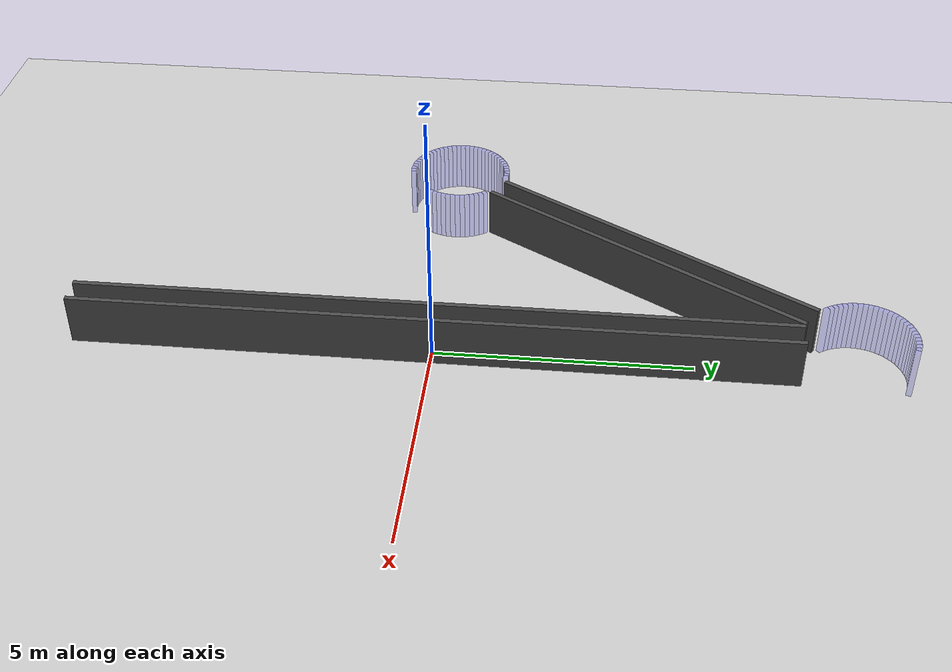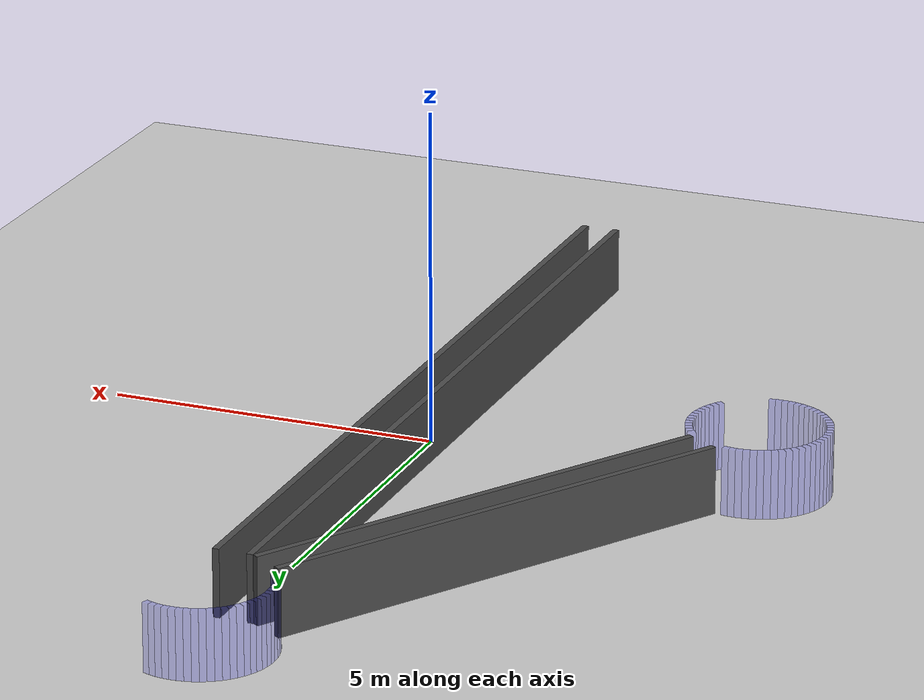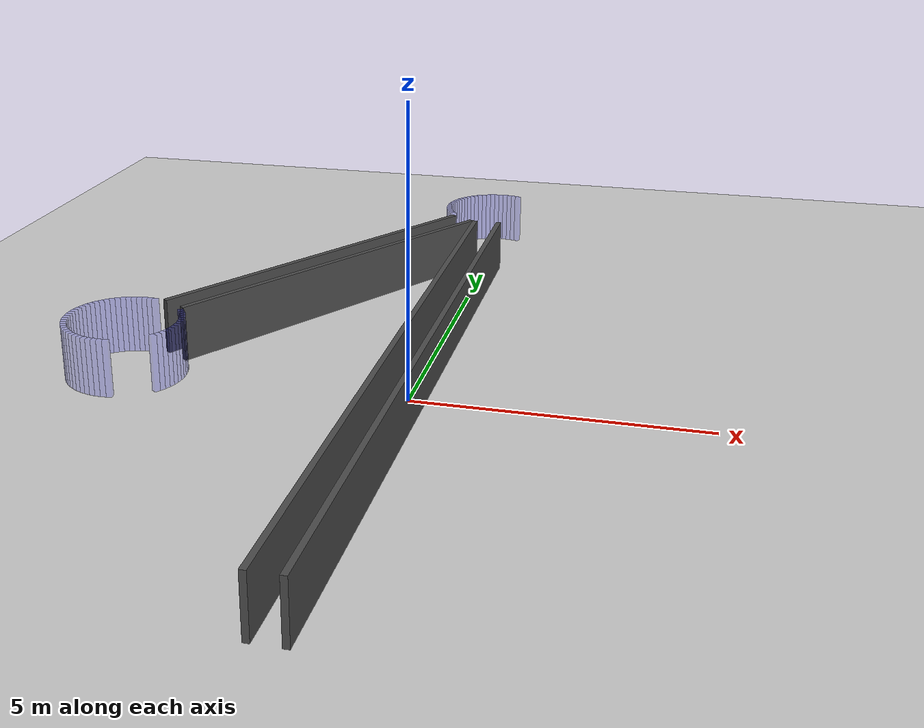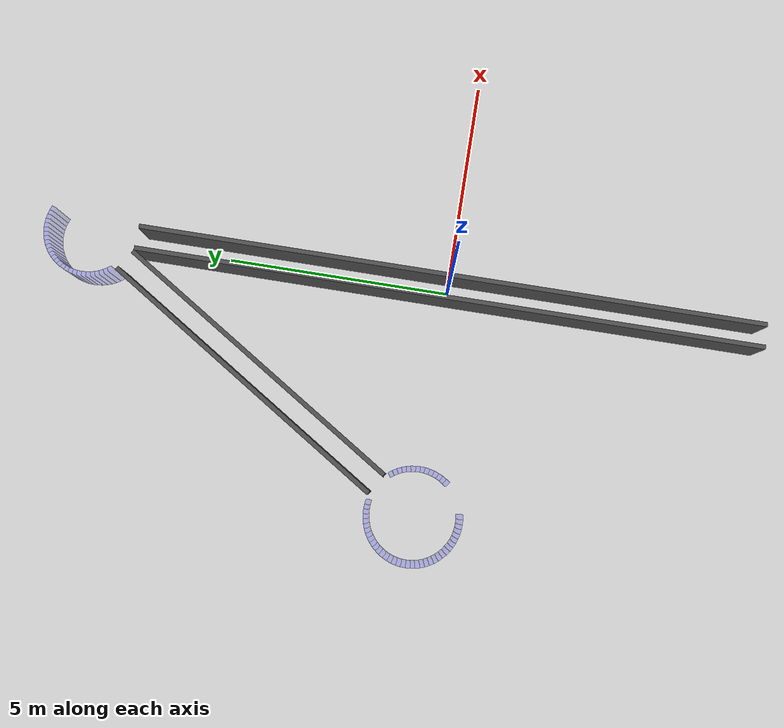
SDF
<sdf version="1.6">
 <world name="graph_routes">
  <include><uri>model://ground_plane</uri></include>
  <include><uri>model://sun</uri></include>
  <model name="node_C_seg0">
   <static>true</static>
   <pose>-5.998795 -0.049068 0.500 0 0 -1.521708941583</pose>
   <link name="link">
    <visual name="vis">
     <geometry><box><size>0.09817477042468103 0.1 1.0</size></box></geometry>
     <material>
      <ambient>0 0 1 0.05</ambient>
      <diffuse>0 0 1 0.05</diffuse>
      <specular>0.1 0.1 0.1 1</specular>
      <emissive>0 0 0 1</emissive>
     </material>
    </visual>
    <collision name="col"><geometry><box><size>0.09817477042468103 0.1 1.0</size></box></geometry></collision>
   </link>
  </model>
  <model name="node_C_seg1">
   <static>true</static>
   <pose>-5.989177 -0.146730 0.500 0 0 -1.423534171158</pose>
   <link name="link">
    <visual name="vis">
     <geometry><box><size>0.09817477042468103 0.1 1.0</size></box></geometry>
     <material>
      <ambient>0 0 1 0.05</ambient>
      <diffuse>0 0 1 0.05</diffuse>
      <specular>0.1 0.1 0.1 1</specular>
      <emissive>0 0 0 1</emissive>
     </material>
    </visual>
    <collision name="col"><geometry><box><size>0.09817477042468103 0.1 1.0</size></box></geometry></collision>
   </link>
  </model>
  <model name="node_C_seg2">
   <static>true</static>
   <pose>-5.970031 -0.242980 0.500 0 0 -1.325359400733</pose>
   <link name="link">
    <visual name="vis">
     <geometry><box><size>0.09817477042468103 0.1 1.0</size></box></geometry>
     <material>
      <ambient>0 0 1 0.05</ambient>
      <diffuse>0 0 1 0.05</diffuse>
      <specular>0.1 0.1 0.1 1</specular>
      <emissive>0 0 0 1</emissive>
     </material>
    </visual>
    <collision name="col"><geometry><box><size>0.09817477042468103 0.1 1.0</size></box></geometry></collision>
   </link>
  </model>
  <model name="node_C_seg3">
   <static>true</static>
   <pose>-5.941544 -0.336890 0.500 0 0 -1.227184630309</pose>
   <link name="link">
    <visual name="vis">
     <geometry><box><size>0.09817477042468103 0.1 1.0</size></box></geometry>
     <material>
      <ambient>0 0 1 0.05</ambient>
      <diffuse>0 0 1 0.05</diffuse>
      <specular>0.1 0.1 0.1 1</specular>
      <emissive>0 0 0 1</emissive>
     </material>
    </visual>
    <collision name="col"><geometry><box><size>0.09817477042468103 0.1 1.0</size></box></geometry></collision>
   </link>
  </model>
  <model name="node_C_seg4">
   <static>true</static>
   <pose>-5.903989 -0.427555 0.500 0 0 -1.129009859884</pose>
   <link name="link">
    <visual name="vis">
     <geometry><box><size>0.09817477042468103 0.1 1.0</size></box></geometry>
     <material>
      <ambient>0 0 1 0.05</ambient>
      <diffuse>0 0 1 0.05</diffuse>
      <specular>0.1 0.1 0.1 1</specular>
      <emissive>0 0 0 1</emissive>
     </material>
    </visual>
    <collision name="col"><geometry><box><size>0.09817477042468103 0.1 1.0</size></box></geometry></collision>
   </link>
  </model>
  <model name="node_C_seg5">
   <static>true</static>
   <pose>-5.857729 -0.514103 0.500 0 0 -1.030835089459</pose>
   <link name="link">
    <visual name="vis">
     <geometry><box><size>0.09817477042468103 0.1 1.0</size></box></geometry>
     <material>
      <ambient>0 0 1 0.05</ambient>
      <diffuse>0 0 1 0.05</diffuse>
      <specular>0.1 0.1 0.1 1</specular>
      <emissive>0 0 0 1</emissive>
     </material>
    </visual>
    <collision name="col"><geometry><box><size>0.09817477042468103 0.1 1.0</size></box></geometry></collision>
   </link>
  </model>
  <model name="node_C_seg6">
   <static>true</static>
   <pose>-5.803208 -0.595699 0.500 0 0 -0.932660319034</pose>
   <link name="link">
    <visual name="vis">
     <geometry><box><size>0.09817477042468103 0.1 1.0</size></box></geometry>
     <material>
      <ambient>0 0 1 0.05</ambient>
      <diffuse>0 0 1 0.05</diffuse>
      <specular>0.1 0.1 0.1 1</specular>
      <emissive>0 0 0 1</emissive>
     </material>
    </visual>
    <collision name="col"><geometry><box><size>0.09817477042468103 0.1 1.0</size></box></geometry></collision>
   </link>
  </model>
  <model name="node_C_seg7">
   <static>true</static>
   <pose>-5.740951 -0.671559 0.500 0 0 -0.834485548610</pose>
   <link name="link">
    <visual name="vis">
     <geometry><box><size>0.09817477042468103 0.1 1.0</size></box></geometry>
     <material>
      <ambient>0 0 1 0.05</ambient>
      <diffuse>0 0 1 0.05</diffuse>
      <specular>0.1 0.1 0.1 1</specular>
      <emissive>0 0 0 1</emissive>
     </material>
    </visual>
    <collision name="col"><geometry><box><size>0.09817477042468103 0.1 1.0</size></box></geometry></collision>
   </link>
  </model>
  <model name="node_C_seg8">
   <static>true</static>
   <pose>-5.671559 -0.740951 0.500 0 0 -0.736310778185</pose>
   <link name="link">
    <visual name="vis">
     <geometry><box><size>0.09817477042468103 0.1 1.0</size></box></geometry>
     <material>
      <ambient>0 0 1 0.05</ambient>
      <diffuse>0 0 1 0.05</diffuse>
      <specular>0.1 0.1 0.1 1</specular>
      <emissive>0 0 0 1</emissive>
     </material>
    </visual>
    <collision name="col"><geometry><box><size>0.09817477042468103 0.1 1.0</size></box></geometry></collision>
   </link>
  </model>
  <model name="node_C_seg9">
   <static>true</static>
   <pose>-5.595699 -0.803208 0.500 0 0 -0.638136007760</pose>
   <link name="link">
    <visual name="vis">
     <geometry><box><size>0.09817477042468103 0.1 1.0</size></box></geometry>
     <material>
      <ambient>0 0 1 0.05</ambient>
      <diffuse>0 0 1 0.05</diffuse>
      <specular>0.1 0.1 0.1 1</specular>
      <emissive>0 0 0 1</emissive>
     </material>
    </visual>
    <collision name="col"><geometry><box><size>0.09817477042468103 0.1 1.0</size></box></geometry></collision>
   </link>
  </model>
  <model name="node_C_seg10">
   <static>true</static>
   <pose>-5.514103 -0.857729 0.500 0 0 -0.539961237336</pose>
   <link name="link">
    <visual name="vis">
     <geometry><box><size>0.09817477042468103 0.1 1.0</size></box></geometry>
     <material>
      <ambient>0 0 1 0.05</ambient>
      <diffuse>0 0 1 0.05</diffuse>
      <specular>0.1 0.1 0.1 1</specular>
      <emissive>0 0 0 1</emissive>
     </material>
    </visual>
    <collision name="col"><geometry><box><size>0.09817477042468103 0.1 1.0</size></box></geometry></collision>
   </link>
  </model>
  <model name="node_C_seg11">
   <static>true</static>
   <pose>-5.427555 -0.903989 0.500 0 0 -0.441786466911</pose>
   <link name="link">
    <visual name="vis">
     <geometry><box><size>0.09817477042468103 0.1 1.0</size></box></geometry>
     <material>
      <ambient>0 0 1 0.05</ambient>
      <diffuse>0 0 1 0.05</diffuse>
      <specular>0.1 0.1 0.1 1</specular>
      <emissive>0 0 0 1</emissive>
     </material>
    </visual>
    <collision name="col"><geometry><box><size>0.09817477042468103 0.1 1.0</size></box></geometry></collision>
   </link>
  </model>
  <model name="node_C_seg12">
   <static>true</static>
   <pose>-5.336890 -0.941544 0.500 0 0 -0.343611696486</pose>
   <link name="link">
    <visual name="vis">
     <geometry><box><size>0.09817477042468103 0.1 1.0</size></box></geometry>
     <material>
      <ambient>0 0 1 0.05</ambient>
      <diffuse>0 0 1 0.05</diffuse>
      <specular>0.1 0.1 0.1 1</specular>
      <emissive>0 0 0 1</emissive>
     </material>
    </visual>
    <collision name="col"><geometry><box><size>0.09817477042468103 0.1 1.0</size></box></geometry></collision>
   </link>
  </model>
  <model name="node_C_seg13">
   <static>true</static>
   <pose>-5.242980 -0.970031 0.500 0 0 -0.245436926062</pose>
   <link name="link">
    <visual name="vis">
     <geometry><box><size>0.09817477042468103 0.1 1.0</size></box></geometry>
     <material>
      <ambient>0 0 1 0.05</ambient>
      <diffuse>0 0 1 0.05</diffuse>
      <specular>0.1 0.1 0.1 1</specular>
      <emissive>0 0 0 1</emissive>
     </material>
    </visual>
    <collision name="col"><geometry><box><size>0.09817477042468103 0.1 1.0</size></box></geometry></collision>
   </link>
  </model>
  <model name="node_C_seg14">
   <static>true</static>
   <pose>-5.146730 -0.989177 0.500 0 0 -0.147262155637</pose>
   <link name="link">
    <visual name="vis">
     <geometry><box><size>0.09817477042468103 0.1 1.0</size></box></geometry>
     <material>
      <ambient>0 0 1 0.05</ambient>
      <diffuse>0 0 1 0.05</diffuse>
      <specular>0.1 0.1 0.1 1</specular>
      <emissive>0 0 0 1</emissive>
     </material>
    </visual>
    <collision name="col"><geometry><box><size>0.09817477042468103 0.1 1.0</size></box></geometry></collision>
   </link>
  </model>
  <model name="node_C_seg15">
   <static>true</static>
   <pose>-5.049068 -0.998795 0.500 0 0 -0.049087385212</pose>
   <link name="link">
    <visual name="vis">
     <geometry><box><size>0.09817477042468103 0.1 1.0</size></box></geometry>
     <material>
      <ambient>0 0 1 0.05</ambient>
      <diffuse>0 0 1 0.05</diffuse>
      <specular>0.1 0.1 0.1 1</specular>
      <emissive>0 0 0 1</emissive>
     </material>
    </visual>
    <collision name="col"><geometry><box><size>0.09817477042468103 0.1 1.0</size></box></geometry></collision>
   </link>
  </model>
  <model name="node_C_seg16">
   <static>true</static>
   <pose>-4.950932 -0.998795 0.500 0 0 0.049087385212</pose>
   <link name="link">
    <visual name="vis">
     <geometry><box><size>0.09817477042468103 0.1 1.0</size></box></geometry>
     <material>
      <ambient>0 0 1 0.05</ambient>
      <diffuse>0 0 1 0.05</diffuse>
      <specular>0.1 0.1 0.1 1</specular>
      <emissive>0 0 0 1</emissive>
     </material>
    </visual>
    <collision name="col"><geometry><box><size>0.09817477042468103 0.1 1.0</size></box></geometry></collision>
   </link>
  </model>
  <model name="node_C_seg17">
   <static>true</static>
   <pose>-4.853270 -0.989177 0.500 0 0 0.147262155637</pose>
   <link name="link">
    <visual name="vis">
     <geometry><box><size>0.09817477042468103 0.1 1.0</size></box></geometry>
     <material>
      <ambient>0 0 1 0.05</ambient>
      <diffuse>0 0 1 0.05</diffuse>
      <specular>0.1 0.1 0.1 1</specular>
      <emissive>0 0 0 1</emissive>
     </material>
    </visual>
    <collision name="col"><geometry><box><size>0.09817477042468103 0.1 1.0</size></box></geometry></collision>
   </link>
  </model>
  <model name="node_C_seg25">
   <static>true</static>
   <pose>-4.196792 -0.595699 0.500 0 0 0.932660319034</pose>
   <link name="link">
    <visual name="vis">
     <geometry><box><size>0.09817477042468103 0.1 1.0</size></box></geometry>
     <material>
      <ambient>0 0 1 0.05</ambient>
      <diffuse>0 0 1 0.05</diffuse>
      <specular>0.1 0.1 0.1 1</specular>
      <emissive>0 0 0 1</emissive>
     </material>
    </visual>
    <collision name="col"><geometry><box><size>0.09817477042468103 0.1 1.0</size></box></geometry></collision>
   </link>
  </model>
  <model name="node_C_seg26">
   <static>true</static>
   <pose>-4.142271 -0.514103 0.500 0 0 1.030835089459</pose>
   <link name="link">
    <visual name="vis">
     <geometry><box><size>0.09817477042468103 0.1 1.0</size></box></geometry>
     <material>
      <ambient>0 0 1 0.05</ambient>
      <diffuse>0 0 1 0.05</diffuse>
      <specular>0.1 0.1 0.1 1</specular>
      <emissive>0 0 0 1</emissive>
     </material>
    </visual>
    <collision name="col"><geometry><box><size>0.09817477042468103 0.1 1.0</size></box></geometry></collision>
   </link>
  </model>
  <model name="node_C_seg27">
   <static>true</static>
   <pose>-4.096011 -0.427555 0.500 0 0 1.129009859884</pose>
   <link name="link">
    <visual name="vis">
     <geometry><box><size>0.09817477042468103 0.1 1.0</size></box></geometry>
     <material>
      <ambient>0 0 1 0.05</ambient>
      <diffuse>0 0 1 0.05</diffuse>
      <specular>0.1 0.1 0.1 1</specular>
      <emissive>0 0 0 1</emissive>
     </material>
    </visual>
    <collision name="col"><geometry><box><size>0.09817477042468103 0.1 1.0</size></box></geometry></collision>
   </link>
  </model>
  <model name="node_C_seg28">
   <static>true</static>
   <pose>-4.058456 -0.336890 0.500 0 0 1.227184630309</pose>
   <link name="link">
    <visual name="vis">
     <geometry><box><size>0.09817477042468103 0.1 1.0</size></box></geometry>
     <material>
      <ambient>0 0 1 0.05</ambient>
      <diffuse>0 0 1 0.05</diffuse>
      <specular>0.1 0.1 0.1 1</specular>
      <emissive>0 0 0 1</emissive>
     </material>
    </visual>
    <collision name="col"><geometry><box><size>0.09817477042468103 0.1 1.0</size></box></geometry></collision>
   </link>
  </model>
  <model name="node_C_seg29">
   <static>true</static>
   <pose>-4.029969 -0.242980 0.500 0 0 1.325359400733</pose>
   <link name="link">
    <visual name="vis">
     <geometry><box><size>0.09817477042468103 0.1 1.0</size></box></geometry>
     <material>
      <ambient>0 0 1 0.05</ambient>
      <diffuse>0 0 1 0.05</diffuse>
      <specular>0.1 0.1 0.1 1</specular>
      <emissive>0 0 0 1</emissive>
     </material>
    </visual>
    <collision name="col"><geometry><box><size>0.09817477042468103 0.1 1.0</size></box></geometry></collision>
   </link>
  </model>
  <model name="node_C_seg30">
   <static>true</static>
   <pose>-4.010823 -0.146730 0.500 0 0 1.423534171158</pose>
   <link name="link">
    <visual name="vis">
     <geometry><box><size>0.09817477042468103 0.1 1.0</size></box></geometry>
     <material>
      <ambient>0 0 1 0.05</ambient>
      <diffuse>0 0 1 0.05</diffuse>
      <specular>0.1 0.1 0.1 1</specular>
      <emissive>0 0 0 1</emissive>
     </material>
    </visual>
    <collision name="col"><geometry><box><size>0.09817477042468103 0.1 1.0</size></box></geometry></collision>
   </link>
  </model>
  <model name="node_C_seg31">
   <static>true</static>
   <pose>-4.001205 -0.049068 0.500 0 0 1.521708941583</pose>
   <link name="link">
    <visual name="vis">
     <geometry><box><size>0.09817477042468103 0.1 1.0</size></box></geometry>
     <material>
      <ambient>0 0 1 0.05</ambient>
      <diffuse>0 0 1 0.05</diffuse>
      <specular>0.1 0.1 0.1 1</specular>
      <emissive>0 0 0 1</emissive>
     </material>
    </visual>
    <collision name="col"><geometry><box><size>0.09817477042468103 0.1 1.0</size></box></geometry></collision>
   </link>
  </model>
  <model name="node_C_seg32">
   <static>true</static>
   <pose>-4.001205 0.049068 0.500 0 0 1.619883712007</pose>
   <link name="link">
    <visual name="vis">
     <geometry><box><size>0.09817477042468103 0.1 1.0</size></box></geometry>
     <material>
      <ambient>0 0 1 0.05</ambient>
      <diffuse>0 0 1 0.05</diffuse>
      <specular>0.1 0.1 0.1 1</specular>
      <emissive>0 0 0 1</emissive>
     </material>
    </visual>
    <collision name="col"><geometry><box><size>0.09817477042468103 0.1 1.0</size></box></geometry></collision>
   </link>
  </model>
  <model name="node_C_seg33">
   <static>true</static>
   <pose>-4.010823 0.146730 0.500 0 0 1.718058482432</pose>
   <link name="link">
    <visual name="vis">
     <geometry><box><size>0.09817477042468103 0.1 1.0</size></box></geometry>
     <material>
      <ambient>0 0 1 0.05</ambient>
      <diffuse>0 0 1 0.05</diffuse>
      <specular>0.1 0.1 0.1 1</specular>
      <emissive>0 0 0 1</emissive>
     </material>
    </visual>
    <collision name="col"><geometry><box><size>0.09817477042468103 0.1 1.0</size></box></geometry></collision>
   </link>
  </model>
  <model name="node_C_seg34">
   <static>true</static>
   <pose>-4.029969 0.242980 0.500 0 0 1.816233252857</pose>
   <link name="link">
    <visual name="vis">
     <geometry><box><size>0.09817477042468103 0.1 1.0</size></box></geometry>
     <material>
      <ambient>0 0 1 0.05</ambient>
      <diffuse>0 0 1 0.05</diffuse>
      <specular>0.1 0.1 0.1 1</specular>
      <emissive>0 0 0 1</emissive>
     </material>
    </visual>
    <collision name="col"><geometry><box><size>0.09817477042468103 0.1 1.0</size></box></geometry></collision>
   </link>
  </model>
  <model name="node_C_seg35">
   <static>true</static>
   <pose>-4.058456 0.336890 0.500 0 0 1.914408023281</pose>
   <link name="link">
    <visual name="vis">
     <geometry><box><size>0.09817477042468103 0.1 1.0</size></box></geometry>
     <material>
      <ambient>0 0 1 0.05</ambient>
      <diffuse>0 0 1 0.05</diffuse>
      <specular>0.1 0.1 0.1 1</specular>
      <emissive>0 0 0 1</emissive>
     </material>
    </visual>
    <collision name="col"><geometry><box><size>0.09817477042468103 0.1 1.0</size></box></geometry></collision>
   </link>
  </model>
  <model name="node_C_seg36">
   <static>true</static>
   <pose>-4.096011 0.427555 0.500 0 0 2.012582793706</pose>
   <link name="link">
    <visual name="vis">
     <geometry><box><size>0.09817477042468103 0.1 1.0</size></box></geometry>
     <material>
      <ambient>0 0 1 0.05</ambient>
      <diffuse>0 0 1 0.05</diffuse>
      <specular>0.1 0.1 0.1 1</specular>
      <emissive>0 0 0 1</emissive>
     </material>
    </visual>
    <collision name="col"><geometry><box><size>0.09817477042468103 0.1 1.0</size></box></geometry></collision>
   </link>
  </model>
  <model name="node_C_seg37">
   <static>true</static>
   <pose>-4.142271 0.514103 0.500 0 0 2.110757564131</pose>
   <link name="link">
    <visual name="vis">
     <geometry><box><size>0.09817477042468103 0.1 1.0</size></box></geometry>
     <material>
      <ambient>0 0 1 0.05</ambient>
      <diffuse>0 0 1 0.05</diffuse>
      <specular>0.1 0.1 0.1 1</specular>
      <emissive>0 0 0 1</emissive>
     </material>
    </visual>
    <collision name="col"><geometry><box><size>0.09817477042468103 0.1 1.0</size></box></geometry></collision>
   </link>
  </model>
  <model name="node_C_seg38">
   <static>true</static>
   <pose>-4.196792 0.595699 0.500 0 0 2.208932334555</pose>
   <link name="link">
    <visual name="vis">
     <geometry><box><size>0.09817477042468103 0.1 1.0</size></box></geometry>
     <material>
      <ambient>0 0 1 0.05</ambient>
      <diffuse>0 0 1 0.05</diffuse>
      <specular>0.1 0.1 0.1 1</specular>
      <emissive>0 0 0 1</emissive>
     </material>
    </visual>
    <collision name="col"><geometry><box><size>0.09817477042468103 0.1 1.0</size></box></geometry></collision>
   </link>
  </model>
  <model name="node_C_seg46">
   <static>true</static>
   <pose>-4.853270 0.989177 0.500 0 0 2.994330497953</pose>
   <link name="link">
    <visual name="vis">
     <geometry><box><size>0.09817477042468103 0.1 1.0</size></box></geometry>
     <material>
      <ambient>0 0 1 0.05</ambient>
      <diffuse>0 0 1 0.05</diffuse>
      <specular>0.1 0.1 0.1 1</specular>
      <emissive>0 0 0 1</emissive>
     </material>
    </visual>
    <collision name="col"><geometry><box><size>0.09817477042468103 0.1 1.0</size></box></geometry></collision>
   </link>
  </model>
  <model name="node_C_seg47">
   <static>true</static>
   <pose>-4.950932 0.998795 0.500 0 0 3.092505268377</pose>
   <link name="link">
    <visual name="vis">
     <geometry><box><size>0.09817477042468103 0.1 1.0</size></box></geometry>
     <material>
      <ambient>0 0 1 0.05</ambient>
      <diffuse>0 0 1 0.05</diffuse>
      <specular>0.1 0.1 0.1 1</specular>
      <emissive>0 0 0 1</emissive>
     </material>
    </visual>
    <collision name="col"><geometry><box><size>0.09817477042468103 0.1 1.0</size></box></geometry></collision>
   </link>
  </model>
  <model name="node_C_seg48">
   <static>true</static>
   <pose>-5.049068 0.998795 0.500 0 0 3.190680038802</pose>
   <link name="link">
    <visual name="vis">
     <geometry><box><size>0.09817477042468103 0.1 1.0</size></box></geometry>
     <material>
      <ambient>0 0 1 0.05</ambient>
      <diffuse>0 0 1 0.05</diffuse>
      <specular>0.1 0.1 0.1 1</specular>
      <emissive>0 0 0 1</emissive>
     </material>
    </visual>
    <collision name="col"><geometry><box><size>0.09817477042468103 0.1 1.0</size></box></geometry></collision>
   </link>
  </model>
  <model name="node_C_seg49">
   <static>true</static>
   <pose>-5.146730 0.989177 0.500 0 0 3.288854809227</pose>
   <link name="link">
    <visual name="vis">
     <geometry><box><size>0.09817477042468103 0.1 1.0</size></box></geometry>
     <material>
      <ambient>0 0 1 0.05</ambient>
      <diffuse>0 0 1 0.05</diffuse>
      <specular>0.1 0.1 0.1 1</specular>
      <emissive>0 0 0 1</emissive>
     </material>
    </visual>
    <collision name="col"><geometry><box><size>0.09817477042468103 0.1 1.0</size></box></geometry></collision>
   </link>
  </model>
  <model name="node_C_seg50">
   <static>true</static>
   <pose>-5.242980 0.970031 0.500 0 0 3.387029579651</pose>
   <link name="link">
    <visual name="vis">
     <geometry><box><size>0.09817477042468103 0.1 1.0</size></box></geometry>
     <material>
      <ambient>0 0 1 0.05</ambient>
      <diffuse>0 0 1 0.05</diffuse>
      <specular>0.1 0.1 0.1 1</specular>
      <emissive>0 0 0 1</emissive>
     </material>
    </visual>
    <collision name="col"><geometry><box><size>0.09817477042468103 0.1 1.0</size></box></geometry></collision>
   </link>
  </model>
  <model name="node_C_seg51">
   <static>true</static>
   <pose>-5.336890 0.941544 0.500 0 0 3.485204350076</pose>
   <link name="link">
    <visual name="vis">
     <geometry><box><size>0.09817477042468103 0.1 1.0</size></box></geometry>
     <material>
      <ambient>0 0 1 0.05</ambient>
      <diffuse>0 0 1 0.05</diffuse>
      <specular>0.1 0.1 0.1 1</specular>
      <emissive>0 0 0 1</emissive>
     </material>
    </visual>
    <collision name="col"><geometry><box><size>0.09817477042468103 0.1 1.0</size></box></geometry></collision>
   </link>
  </model>
  <model name="node_C_seg52">
   <static>true</static>
   <pose>-5.427555 0.903989 0.500 0 0 3.583379120501</pose>
   <link name="link">
    <visual name="vis">
     <geometry><box><size>0.09817477042468103 0.1 1.0</size></box></geometry>
     <material>
      <ambient>0 0 1 0.05</ambient>
      <diffuse>0 0 1 0.05</diffuse>
      <specular>0.1 0.1 0.1 1</specular>
      <emissive>0 0 0 1</emissive>
     </material>
    </visual>
    <collision name="col"><geometry><box><size>0.09817477042468103 0.1 1.0</size></box></geometry></collision>
   </link>
  </model>
  <model name="node_C_seg53">
   <static>true</static>
   <pose>-5.514103 0.857729 0.500 0 0 3.681553890926</pose>
   <link name="link">
    <visual name="vis">
     <geometry><box><size>0.09817477042468103 0.1 1.0</size></box></geometry>
     <material>
      <ambient>0 0 1 0.05</ambient>
      <diffuse>0 0 1 0.05</diffuse>
      <specular>0.1 0.1 0.1 1</specular>
      <emissive>0 0 0 1</emissive>
     </material>
    </visual>
    <collision name="col"><geometry><box><size>0.09817477042468103 0.1 1.0</size></box></geometry></collision>
   </link>
  </model>
  <model name="node_C_seg54">
   <static>true</static>
   <pose>-5.595699 0.803208 0.500 0 0 3.779728661350</pose>
   <link name="link">
    <visual name="vis">
     <geometry><box><size>0.09817477042468103 0.1 1.0</size></box></geometry>
     <material>
      <ambient>0 0 1 0.05</ambient>
      <diffuse>0 0 1 0.05</diffuse>
      <specular>0.1 0.1 0.1 1</specular>
      <emissive>0 0 0 1</emissive>
     </material>
    </visual>
    <collision name="col"><geometry><box><size>0.09817477042468103 0.1 1.0</size></box></geometry></collision>
   </link>
  </model>
  <model name="node_C_seg55">
   <static>true</static>
   <pose>-5.671559 0.740951 0.500 0 0 3.877903431775</pose>
   <link name="link">
    <visual name="vis">
     <geometry><box><size>0.09817477042468103 0.1 1.0</size></box></geometry>
     <material>
      <ambient>0 0 1 0.05</ambient>
      <diffuse>0 0 1 0.05</diffuse>
      <specular>0.1 0.1 0.1 1</specular>
      <emissive>0 0 0 1</emissive>
     </material>
    </visual>
    <collision name="col"><geometry><box><size>0.09817477042468103 0.1 1.0</size></box></geometry></collision>
   </link>
  </model>
  <model name="node_C_seg56">
   <static>true</static>
   <pose>-5.740951 0.671559 0.500 0 0 3.976078202200</pose>
   <link name="link">
    <visual name="vis">
     <geometry><box><size>0.09817477042468103 0.1 1.0</size></box></geometry>
     <material>
      <ambient>0 0 1 0.05</ambient>
      <diffuse>0 0 1 0.05</diffuse>
      <specular>0.1 0.1 0.1 1</specular>
      <emissive>0 0 0 1</emissive>
     </material>
    </visual>
    <collision name="col"><geometry><box><size>0.09817477042468103 0.1 1.0</size></box></geometry></collision>
   </link>
  </model>
  <model name="node_C_seg57">
   <static>true</static>
   <pose>-5.803208 0.595699 0.500 0 0 4.074252972624</pose>
   <link name="link">
    <visual name="vis">
     <geometry><box><size>0.09817477042468103 0.1 1.0</size></box></geometry>
     <material>
      <ambient>0 0 1 0.05</ambient>
      <diffuse>0 0 1 0.05</diffuse>
      <specular>0.1 0.1 0.1 1</specular>
      <emissive>0 0 0 1</emissive>
     </material>
    </visual>
    <collision name="col"><geometry><box><size>0.09817477042468103 0.1 1.0</size></box></geometry></collision>
   </link>
  </model>
  <model name="node_C_seg58">
   <static>true</static>
   <pose>-5.857729 0.514103 0.500 0 0 4.172427743049</pose>
   <link name="link">
    <visual name="vis">
     <geometry><box><size>0.09817477042468103 0.1 1.0</size></box></geometry>
     <material>
      <ambient>0 0 1 0.05</ambient>
      <diffuse>0 0 1 0.05</diffuse>
      <specular>0.1 0.1 0.1 1</specular>
      <emissive>0 0 0 1</emissive>
     </material>
    </visual>
    <collision name="col"><geometry><box><size>0.09817477042468103 0.1 1.0</size></box></geometry></collision>
   </link>
  </model>
  <model name="node_C_seg59">
   <static>true</static>
   <pose>-5.903989 0.427555 0.500 0 0 4.270602513474</pose>
   <link name="link">
    <visual name="vis">
     <geometry><box><size>0.09817477042468103 0.1 1.0</size></box></geometry>
     <material>
      <ambient>0 0 1 0.05</ambient>
      <diffuse>0 0 1 0.05</diffuse>
      <specular>0.1 0.1 0.1 1</specular>
      <emissive>0 0 0 1</emissive>
     </material>
    </visual>
    <collision name="col"><geometry><box><size>0.09817477042468103 0.1 1.0</size></box></geometry></collision>
   </link>
  </model>
  <model name="node_C_seg60">
   <static>true</static>
   <pose>-5.941544 0.336890 0.500 0 0 4.368777283898</pose>
   <link name="link">
    <visual name="vis">
     <geometry><box><size>0.09817477042468103 0.1 1.0</size></box></geometry>
     <material>
      <ambient>0 0 1 0.05</ambient>
      <diffuse>0 0 1 0.05</diffuse>
      <specular>0.1 0.1 0.1 1</specular>
      <emissive>0 0 0 1</emissive>
     </material>
    </visual>
    <collision name="col"><geometry><box><size>0.09817477042468103 0.1 1.0</size></box></geometry></collision>
   </link>
  </model>
  <model name="node_C_seg61">
   <static>true</static>
   <pose>-5.970031 0.242980 0.500 0 0 4.466952054323</pose>
   <link name="link">
    <visual name="vis">
     <geometry><box><size>0.09817477042468103 0.1 1.0</size></box></geometry>
     <material>
      <ambient>0 0 1 0.05</ambient>
      <diffuse>0 0 1 0.05</diffuse>
      <specular>0.1 0.1 0.1 1</specular>
      <emissive>0 0 0 1</emissive>
     </material>
    </visual>
    <collision name="col"><geometry><box><size>0.09817477042468103 0.1 1.0</size></box></geometry></collision>
   </link>
  </model>
  <model name="node_C_seg62">
   <static>true</static>
   <pose>-5.989177 0.146730 0.500 0 0 4.565126824748</pose>
   <link name="link">
    <visual name="vis">
     <geometry><box><size>0.09817477042468103 0.1 1.0</size></box></geometry>
     <material>
      <ambient>0 0 1 0.05</ambient>
      <diffuse>0 0 1 0.05</diffuse>
      <specular>0.1 0.1 0.1 1</specular>
      <emissive>0 0 0 1</emissive>
     </material>
    </visual>
    <collision name="col"><geometry><box><size>0.09817477042468103 0.1 1.0</size></box></geometry></collision>
   </link>
  </model>
  <model name="node_C_seg63">
   <static>true</static>
   <pose>-5.998795 0.049068 0.500 0 0 4.663301595172</pose>
   <link name="link">
    <visual name="vis">
     <geometry><box><size>0.09817477042468103 0.1 1.0</size></box></geometry>
     <material>
      <ambient>0 0 1 0.05</ambient>
      <diffuse>0 0 1 0.05</diffuse>
      <specular>0.1 0.1 0.1 1</specular>
      <emissive>0 0 0 1</emissive>
     </material>
    </visual>
    <collision name="col"><geometry><box><size>0.09817477042468103 0.1 1.0</size></box></geometry></collision>
   </link>
  </model>
  <model name="node_G_seg0">
   <static>true</static>
   <pose>-0.998795 7.950932 0.500 0 0 -1.521708941583</pose>
   <link name="link">
    <visual name="vis">
     <geometry><box><size>0.09817477042468103 0.1 1.0</size></box></geometry>
     <material>
      <ambient>0 0 1 0.05</ambient>
      <diffuse>0 0 1 0.05</diffuse>
      <specular>0.1 0.1 0.1 1</specular>
      <emissive>0 0 0 1</emissive>
     </material>
    </visual>
    <collision name="col"><geometry><box><size>0.09817477042468103 0.1 1.0</size></box></geometry></collision>
   </link>
  </model>
  <model name="node_G_seg1">
   <static>true</static>
   <pose>-0.989177 7.853270 0.500 0 0 -1.423534171158</pose>
   <link name="link">
    <visual name="vis">
     <geometry><box><size>0.09817477042468103 0.1 1.0</size></box></geometry>
     <material>
      <ambient>0 0 1 0.05</ambient>
      <diffuse>0 0 1 0.05</diffuse>
      <specular>0.1 0.1 0.1 1</specular>
      <emissive>0 0 0 1</emissive>
     </material>
    </visual>
    <collision name="col"><geometry><box><size>0.09817477042468103 0.1 1.0</size></box></geometry></collision>
   </link>
  </model>
  <model name="node_G_seg2">
   <static>true</static>
   <pose>-0.970031 7.757020 0.500 0 0 -1.325359400733</pose>
   <link name="link">
    <visual name="vis">
     <geometry><box><size>0.09817477042468103 0.1 1.0</size></box></geometry>
     <material>
      <ambient>0 0 1 0.05</ambient>
      <diffuse>0 0 1 0.05</diffuse>
      <specular>0.1 0.1 0.1 1</specular>
      <emissive>0 0 0 1</emissive>
     </material>
    </visual>
    <collision name="col"><geometry><box><size>0.09817477042468103 0.1 1.0</size></box></geometry></collision>
   </link>
  </model>
  <model name="node_G_seg3">
   <static>true</static>
   <pose>-0.941544 7.663110 0.500 0 0 -1.227184630309</pose>
   <link name="link">
    <visual name="vis">
     <geometry><box><size>0.09817477042468103 0.1 1.0</size></box></geometry>
     <material>
      <ambient>0 0 1 0.05</ambient>
      <diffuse>0 0 1 0.05</diffuse>
      <specular>0.1 0.1 0.1 1</specular>
      <emissive>0 0 0 1</emissive>
     </material>
    </visual>
    <collision name="col"><geometry><box><size>0.09817477042468103 0.1 1.0</size></box></geometry></collision>
   </link>
  </model>
  <model name="node_G_seg4">
   <static>true</static>
   <pose>-0.903989 7.572445 0.500 0 0 -1.129009859884</pose>
   <link name="link">
    <visual name="vis">
     <geometry><box><size>0.09817477042468103 0.1 1.0</size></box></geometry>
     <material>
      <ambient>0 0 1 0.05</ambient>
      <diffuse>0 0 1 0.05</diffuse>
      <specular>0.1 0.1 0.1 1</specular>
      <emissive>0 0 0 1</emissive>
     </material>
    </visual>
    <collision name="col"><geometry><box><size>0.09817477042468103 0.1 1.0</size></box></geometry></collision>
   </link>
  </model>
  <model name="node_G_seg5">
   <static>true</static>
   <pose>-0.857729 7.485897 0.500 0 0 -1.030835089459</pose>
   <link name="link">
    <visual name="vis">
     <geometry><box><size>0.09817477042468103 0.1 1.0</size></box></geometry>
     <material>
      <ambient>0 0 1 0.05</ambient>
      <diffuse>0 0 1 0.05</diffuse>
      <specular>0.1 0.1 0.1 1</specular>
      <emissive>0 0 0 1</emissive>
     </material>
    </visual>
    <collision name="col"><geometry><box><size>0.09817477042468103 0.1 1.0</size></box></geometry></collision>
   </link>
  </model>
  <model name="node_G_seg6">
   <static>true</static>
   <pose>-0.803208 7.404301 0.500 0 0 -0.932660319034</pose>
   <link name="link">
    <visual name="vis">
     <geometry><box><size>0.09817477042468103 0.1 1.0</size></box></geometry>
     <material>
      <ambient>0 0 1 0.05</ambient>
      <diffuse>0 0 1 0.05</diffuse>
      <specular>0.1 0.1 0.1 1</specular>
      <emissive>0 0 0 1</emissive>
     </material>
    </visual>
    <collision name="col"><geometry><box><size>0.09817477042468103 0.1 1.0</size></box></geometry></collision>
   </link>
  </model>
  <model name="node_G_seg44">
   <static>true</static>
   <pose>0.336890 8.941544 0.500 0 0 2.797980957103</pose>
   <link name="link">
    <visual name="vis">
     <geometry><box><size>0.09817477042468103 0.1 1.0</size></box></geometry>
     <material>
      <ambient>0 0 1 0.05</ambient>
      <diffuse>0 0 1 0.05</diffuse>
      <specular>0.1 0.1 0.1 1</specular>
      <emissive>0 0 0 1</emissive>
     </material>
    </visual>
    <collision name="col"><geometry><box><size>0.09817477042468103 0.1 1.0</size></box></geometry></collision>
   </link>
  </model>
  <model name="node_G_seg45">
   <static>true</static>
   <pose>0.242980 8.970031 0.500 0 0 2.896155727528</pose>
   <link name="link">
    <visual name="vis">
     <geometry><box><size>0.09817477042468103 0.1 1.0</size></box></geometry>
     <material>
      <ambient>0 0 1 0.05</ambient>
      <diffuse>0 0 1 0.05</diffuse>
      <specular>0.1 0.1 0.1 1</specular>
      <emissive>0 0 0 1</emissive>
     </material>
    </visual>
    <collision name="col"><geometry><box><size>0.09817477042468103 0.1 1.0</size></box></geometry></collision>
   </link>
  </model>
  <model name="node_G_seg46">
   <static>true</static>
   <pose>0.146730 8.989177 0.500 0 0 2.994330497953</pose>
   <link name="link">
    <visual name="vis">
     <geometry><box><size>0.09817477042468103 0.1 1.0</size></box></geometry>
     <material>
      <ambient>0 0 1 0.05</ambient>
      <diffuse>0 0 1 0.05</diffuse>
      <specular>0.1 0.1 0.1 1</specular>
      <emissive>0 0 0 1</emissive>
     </material>
    </visual>
    <collision name="col"><geometry><box><size>0.09817477042468103 0.1 1.0</size></box></geometry></collision>
   </link>
  </model>
  <model name="node_G_seg47">
   <static>true</static>
   <pose>0.049068 8.998795 0.500 0 0 3.092505268377</pose>
   <link name="link">
    <visual name="vis">
     <geometry><box><size>0.09817477042468103 0.1 1.0</size></box></geometry>
     <material>
      <ambient>0 0 1 0.05</ambient>
      <diffuse>0 0 1 0.05</diffuse>
      <specular>0.1 0.1 0.1 1</specular>
      <emissive>0 0 0 1</emissive>
     </material>
    </visual>
    <collision name="col"><geometry><box><size>0.09817477042468103 0.1 1.0</size></box></geometry></collision>
   </link>
  </model>
  <model name="node_G_seg48">
   <static>true</static>
   <pose>-0.049068 8.998795 0.500 0 0 3.190680038802</pose>
   <link name="link">
    <visual name="vis">
     <geometry><box><size>0.09817477042468103 0.1 1.0</size></box></geometry>
     <material>
      <ambient>0 0 1 0.05</ambient>
      <diffuse>0 0 1 0.05</diffuse>
      <specular>0.1 0.1 0.1 1</specular>
      <emissive>0 0 0 1</emissive>
     </material>
    </visual>
    <collision name="col"><geometry><box><size>0.09817477042468103 0.1 1.0</size></box></geometry></collision>
   </link>
  </model>
  <model name="node_G_seg49">
   <static>true</static>
   <pose>-0.146730 8.989177 0.500 0 0 3.288854809227</pose>
   <link name="link">
    <visual name="vis">
     <geometry><box><size>0.09817477042468103 0.1 1.0</size></box></geometry>
     <material>
      <ambient>0 0 1 0.05</ambient>
      <diffuse>0 0 1 0.05</diffuse>
      <specular>0.1 0.1 0.1 1</specular>
      <emissive>0 0 0 1</emissive>
     </material>
    </visual>
    <collision name="col"><geometry><box><size>0.09817477042468103 0.1 1.0</size></box></geometry></collision>
   </link>
  </model>
  <model name="node_G_seg50">
   <static>true</static>
   <pose>-0.242980 8.970031 0.500 0 0 3.387029579651</pose>
   <link name="link">
    <visual name="vis">
     <geometry><box><size>0.09817477042468103 0.1 1.0</size></box></geometry>
     <material>
      <ambient>0 0 1 0.05</ambient>
      <diffuse>0 0 1 0.05</diffuse>
      <specular>0.1 0.1 0.1 1</specular>
      <emissive>0 0 0 1</emissive>
     </material>
    </visual>
    <collision name="col"><geometry><box><size>0.09817477042468103 0.1 1.0</size></box></geometry></collision>
   </link>
  </model>
  <model name="node_G_seg51">
   <static>true</static>
   <pose>-0.336890 8.941544 0.500 0 0 3.485204350076</pose>
   <link name="link">
    <visual name="vis">
     <geometry><box><size>0.09817477042468103 0.1 1.0</size></box></geometry>
     <material>
      <ambient>0 0 1 0.05</ambient>
      <diffuse>0 0 1 0.05</diffuse>
      <specular>0.1 0.1 0.1 1</specular>
      <emissive>0 0 0 1</emissive>
     </material>
    </visual>
    <collision name="col"><geometry><box><size>0.09817477042468103 0.1 1.0</size></box></geometry></collision>
   </link>
  </model>
  <model name="node_G_seg52">
   <static>true</static>
   <pose>-0.427555 8.903989 0.500 0 0 3.583379120501</pose>
   <link name="link">
    <visual name="vis">
     <geometry><box><size>0.09817477042468103 0.1 1.0</size></box></geometry>
     <material>
      <ambient>0 0 1 0.05</ambient>
      <diffuse>0 0 1 0.05</diffuse>
      <specular>0.1 0.1 0.1 1</specular>
      <emissive>0 0 0 1</emissive>
     </material>
    </visual>
    <collision name="col"><geometry><box><size>0.09817477042468103 0.1 1.0</size></box></geometry></collision>
   </link>
  </model>
  <model name="node_G_seg53">
   <static>true</static>
   <pose>-0.514103 8.857729 0.500 0 0 3.681553890926</pose>
   <link name="link">
    <visual name="vis">
     <geometry><box><size>0.09817477042468103 0.1 1.0</size></box></geometry>
     <material>
      <ambient>0 0 1 0.05</ambient>
      <diffuse>0 0 1 0.05</diffuse>
      <specular>0.1 0.1 0.1 1</specular>
      <emissive>0 0 0 1</emissive>
     </material>
    </visual>
    <collision name="col"><geometry><box><size>0.09817477042468103 0.1 1.0</size></box></geometry></collision>
   </link>
  </model>
  <model name="node_G_seg54">
   <static>true</static>
   <pose>-0.595699 8.803208 0.500 0 0 3.779728661350</pose>
   <link name="link">
    <visual name="vis">
     <geometry><box><size>0.09817477042468103 0.1 1.0</size></box></geometry>
     <material>
      <ambient>0 0 1 0.05</ambient>
      <diffuse>0 0 1 0.05</diffuse>
      <specular>0.1 0.1 0.1 1</specular>
      <emissive>0 0 0 1</emissive>
     </material>
    </visual>
    <collision name="col"><geometry><box><size>0.09817477042468103 0.1 1.0</size></box></geometry></collision>
   </link>
  </model>
  <model name="node_G_seg55">
   <static>true</static>
   <pose>-0.671559 8.740951 0.500 0 0 3.877903431775</pose>
   <link name="link">
    <visual name="vis">
     <geometry><box><size>0.09817477042468103 0.1 1.0</size></box></geometry>
     <material>
      <ambient>0 0 1 0.05</ambient>
      <diffuse>0 0 1 0.05</diffuse>
      <specular>0.1 0.1 0.1 1</specular>
      <emissive>0 0 0 1</emissive>
     </material>
    </visual>
    <collision name="col"><geometry><box><size>0.09817477042468103 0.1 1.0</size></box></geometry></collision>
   </link>
  </model>
  <model name="node_G_seg56">
   <static>true</static>
   <pose>-0.740951 8.671559 0.500 0 0 3.976078202200</pose>
   <link name="link">
    <visual name="vis">
     <geometry><box><size>0.09817477042468103 0.1 1.0</size></box></geometry>
     <material>
      <ambient>0 0 1 0.05</ambient>
      <diffuse>0 0 1 0.05</diffuse>
      <specular>0.1 0.1 0.1 1</specular>
      <emissive>0 0 0 1</emissive>
     </material>
    </visual>
    <collision name="col"><geometry><box><size>0.09817477042468103 0.1 1.0</size></box></geometry></collision>
   </link>
  </model>
  <model name="node_G_seg57">
   <static>true</static>
   <pose>-0.803208 8.595699 0.500 0 0 4.074252972624</pose>
   <link name="link">
    <visual name="vis">
     <geometry><box><size>0.09817477042468103 0.1 1.0</size></box></geometry>
     <material>
      <ambient>0 0 1 0.05</ambient>
      <diffuse>0 0 1 0.05</diffuse>
      <specular>0.1 0.1 0.1 1</specular>
      <emissive>0 0 0 1</emissive>
     </material>
    </visual>
    <collision name="col"><geometry><box><size>0.09817477042468103 0.1 1.0</size></box></geometry></collision>
   </link>
  </model>
  <model name="node_G_seg58">
   <static>true</static>
   <pose>-0.857729 8.514103 0.500 0 0 4.172427743049</pose>
   <link name="link">
    <visual name="vis">
     <geometry><box><size>0.09817477042468103 0.1 1.0</size></box></geometry>
     <material>
      <ambient>0 0 1 0.05</ambient>
      <diffuse>0 0 1 0.05</diffuse>
      <specular>0.1 0.1 0.1 1</specular>
      <emissive>0 0 0 1</emissive>
     </material>
    </visual>
    <collision name="col"><geometry><box><size>0.09817477042468103 0.1 1.0</size></box></geometry></collision>
   </link>
  </model>
  <model name="node_G_seg59">
   <static>true</static>
   <pose>-0.903989 8.427555 0.500 0 0 4.270602513474</pose>
   <link name="link">
    <visual name="vis">
     <geometry><box><size>0.09817477042468103 0.1 1.0</size></box></geometry>
     <material>
      <ambient>0 0 1 0.05</ambient>
      <diffuse>0 0 1 0.05</diffuse>
      <specular>0.1 0.1 0.1 1</specular>
      <emissive>0 0 0 1</emissive>
     </material>
    </visual>
    <collision name="col"><geometry><box><size>0.09817477042468103 0.1 1.0</size></box></geometry></collision>
   </link>
  </model>
  <model name="node_G_seg60">
   <static>true</static>
   <pose>-0.941544 8.336890 0.500 0 0 4.368777283898</pose>
   <link name="link">
    <visual name="vis">
     <geometry><box><size>0.09817477042468103 0.1 1.0</size></box></geometry>
     <material>
      <ambient>0 0 1 0.05</ambient>
      <diffuse>0 0 1 0.05</diffuse>
      <specular>0.1 0.1 0.1 1</specular>
      <emissive>0 0 0 1</emissive>
     </material>
    </visual>
    <collision name="col"><geometry><box><size>0.09817477042468103 0.1 1.0</size></box></geometry></collision>
   </link>
  </model>
  <model name="node_G_seg61">
   <static>true</static>
   <pose>-0.970031 8.242980 0.500 0 0 4.466952054323</pose>
   <link name="link">
    <visual name="vis">
     <geometry><box><size>0.09817477042468103 0.1 1.0</size></box></geometry>
     <material>
      <ambient>0 0 1 0.05</ambient>
      <diffuse>0 0 1 0.05</diffuse>
      <specular>0.1 0.1 0.1 1</specular>
      <emissive>0 0 0 1</emissive>
     </material>
    </visual>
    <collision name="col"><geometry><box><size>0.09817477042468103 0.1 1.0</size></box></geometry></collision>
   </link>
  </model>
  <model name="node_G_seg62">
   <static>true</static>
   <pose>-0.989177 8.146730 0.500 0 0 4.565126824748</pose>
   <link name="link">
    <visual name="vis">
     <geometry><box><size>0.09817477042468103 0.1 1.0</size></box></geometry>
     <material>
      <ambient>0 0 1 0.05</ambient>
      <diffuse>0 0 1 0.05</diffuse>
      <specular>0.1 0.1 0.1 1</specular>
      <emissive>0 0 0 1</emissive>
     </material>
    </visual>
    <collision name="col"><geometry><box><size>0.09817477042468103 0.1 1.0</size></box></geometry></collision>
   </link>
  </model>
  <model name="node_G_seg63">
   <static>true</static>
   <pose>-0.998795 8.049068 0.500 0 0 4.663301595172</pose>
   <link name="link">
    <visual name="vis">
     <geometry><box><size>0.09817477042468103 0.1 1.0</size></box></geometry>
     <material>
      <ambient>0 0 1 0.05</ambient>
      <diffuse>0 0 1 0.05</diffuse>
      <specular>0.1 0.1 0.1 1</specular>
      <emissive>0 0 0 1</emissive>
     </material>
    </visual>
    <collision name="col"><geometry><box><size>0.09817477042468103 0.1 1.0</size></box></geometry></collision>
   </link>
  </model>
  <model name="edge1_L">
   <static>true</static>
   <pose>-2.712000 4.132500 0.500 0 0 1.012197011451</pose>
   <link name="link">
    <visual name="vis">
     <geometry><box><size>7.383981132056603 0.1 1.0</size></box></geometry>
     <material>
      <script><uri>file://media/materials/scripts/gazebo.material</uri><name>Gazebo/DarkGrey</name></script>
     </material>
    </visual>
    <collision name="col"><geometry><box><size>7.383981132056603 0.1 1.0</size></box></geometry></collision>
   </link>
  </model>
  <model name="edge1_R">
   <static>true</static>
   <pose>-2.288000 3.867500 0.500 0 0 1.012197011451</pose>
   <link name="link">
    <visual name="vis">
     <geometry><box><size>7.383981132056603 0.1 1.0</size></box></geometry>
     <material>
      <script><uri>file://media/materials/scripts/gazebo.material</uri><name>Gazebo/DarkGrey</name></script>
     </material>
    </visual>
    <collision name="col"><geometry><box><size>7.383981132056603 0.1 1.0</size></box></geometry></collision>
   </link>
  </model>
  <model name="edge2_L">
   <static>true</static>
   <pose>-0.250000 0.000000 0.500 0 0 1.570796326795</pose>
   <link name="link">
    <visual name="vis">
     <geometry><box><size>13.95 0.1 1.0</size></box></geometry>
     <material>
      <script><uri>file://media/materials/scripts/gazebo.material</uri><name>Gazebo/DarkGrey</name></script>
     </material>
    </visual>
    <collision name="col"><geometry><box><size>13.95 0.1 1.0</size></box></geometry></collision>
   </link>
  </model>
  <model name="edge2_R">
   <static>true</static>
   <pose>0.250000 0.000000 0.500 0 0 1.570796326795</pose>
   <link name="link">
    <visual name="vis">
     <geometry><box><size>13.95 0.1 1.0</size></box></geometry>
     <material>
      <script><uri>file://media/materials/scripts/gazebo.material</uri><name>Gazebo/DarkGrey</name></script>
     </material>
    </visual>
    <collision name="col"><geometry><box><size>13.95 0.1 1.0</size></box></geometry></collision>
   </link>
  </model>
 </world>
</sdf>
